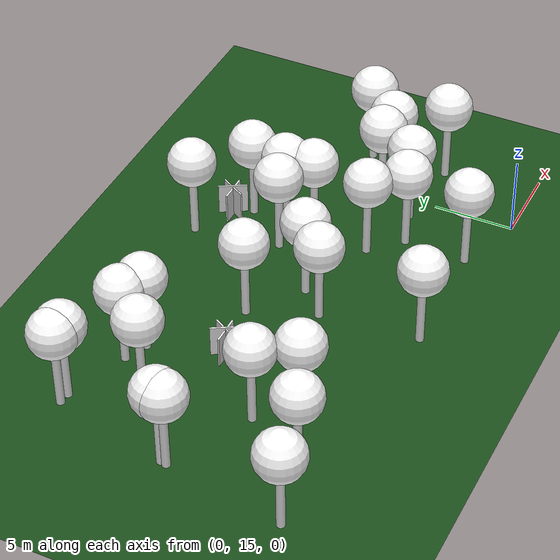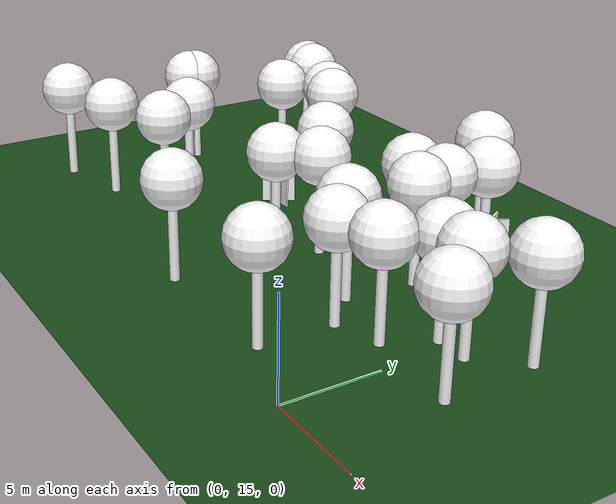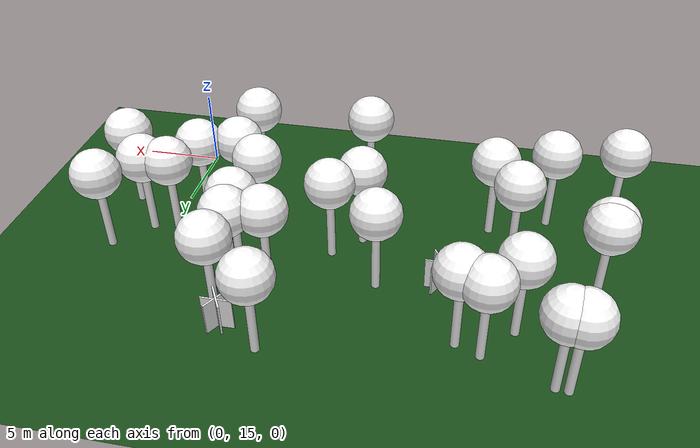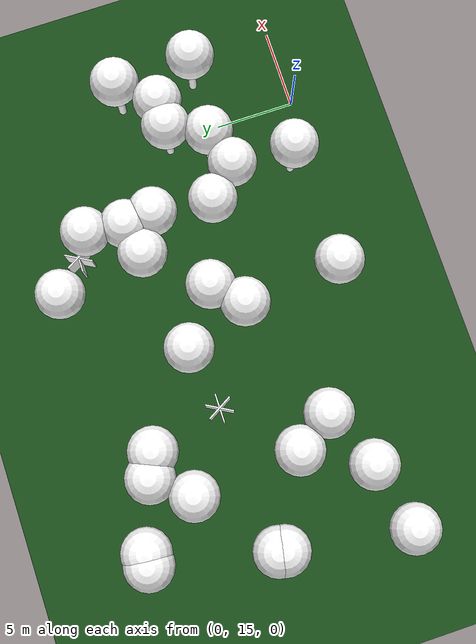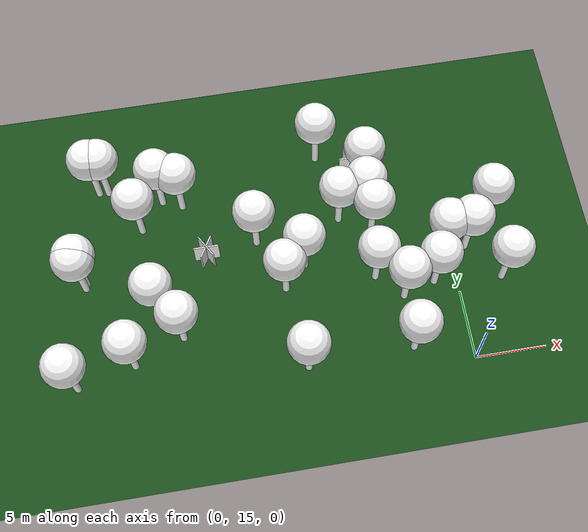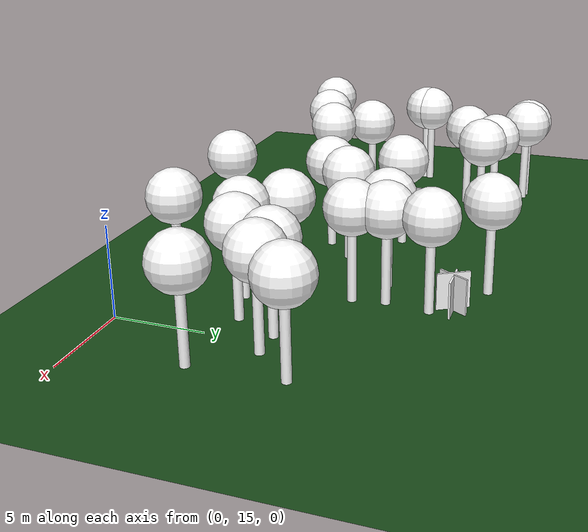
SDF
<sdf version="1.8">
 <world name="forest_world">
  <model name="fire_5">
   <pose>-17.50 25.65 1.00 0 0 0.00</pose>
   <static>true</static>
   <link name="fire_link">
    <visual name="fire_5_fire_main_0">
     <geometry><box><size>1.80 0.10 2.00</size></box></geometry>
     <material>
      <ambient>0.7 0.35 0.0 1</ambient>
      <diffuse>1 1 1 1</diffuse>
      <specular>0 0 0 1</specular>
      <emissive>0 0 0 1</emissive>
      <pbr>
       <metal><albedo_map>textures/fire.png</albedo_map><metalness>0.0</metalness><roughness>0.6</roughness></metal>
      </pbr>
     </material>
     <transparency>0.0</transparency>
     <cast_shadows>false</cast_shadows>
    </visual>
    <visual name="fire_5_fire_60_1">
     <pose>0.00 0.00 0.10 0 0 1.05</pose>
     <geometry><box><size>1.80 0.10 2.00</size></box></geometry>
     <material>
      <ambient>0.7 0.35 0.0 1</ambient>
      <diffuse>1 1 1 1</diffuse>
      <specular>0 0 0 1</specular>
      <emissive>0 0 0 1</emissive>
      <pbr>
       <metal><albedo_map>textures/fire.png</albedo_map><metalness>0.0</metalness><roughness>0.6</roughness></metal>
      </pbr>
     </material>
     <transparency>0.0</transparency>
     <cast_shadows>false</cast_shadows>
    </visual>
    <visual name="fire_5_fire_120_2">
     <pose>0.00 0.00 0.20 0 0 2.09</pose>
     <geometry><box><size>1.80 0.10 2.00</size></box></geometry>
     <material>
      <ambient>0.7 0.35 0.0 1</ambient>
      <diffuse>1 1 1 1</diffuse>
      <specular>0 0 0 1</specular>
      <emissive>0 0 0 1</emissive>
      <pbr>
       <metal><albedo_map>textures/fire.png</albedo_map><metalness>0.0</metalness><roughness>0.6</roughness></metal>
      </pbr>
     </material>
     <transparency>0.0</transparency>
     <cast_shadows>false</cast_shadows>
    </visual>
    <light type="point" name="fire_5_light_0">
     <pose>0.40 0.00 0.50 0 0 0</pose>
     <diffuse>1.0 0.7 0.3 1</diffuse>
     <specular>1.0 0.8 0.3 1</specular>
     <intensity>2</intensity>
     <attenuation>
      <range>2</range>
      <constant>0.1</constant>
      <linear>0.05</linear>
      <quadratic>0.02</quadratic>
     </attenuation>
     <cast_shadows>false</cast_shadows>
    </light>
    <light type="point" name="fire_5_light_1">
     <pose>-0.20 0.35 0.50 0 0 0</pose>
     <diffuse>1.0 0.7 0.3 1</diffuse>
     <specular>1.0 0.8 0.3 1</specular>
     <intensity>2</intensity>
     <attenuation>
      <range>2</range>
      <constant>0.1</constant>
      <linear>0.05</linear>
      <quadratic>0.02</quadratic>
     </attenuation>
     <cast_shadows>false</cast_shadows>
    </light>
    <light type="point" name="fire_5_light_2">
     <pose>-0.20 -0.35 0.50 0 0 0</pose>
     <diffuse>1.0 0.7 0.3 1</diffuse>
     <specular>1.0 0.8 0.3 1</specular>
     <intensity>2</intensity>
     <attenuation>
      <range>2</range>
      <constant>0.1</constant>
      <linear>0.05</linear>
      <quadratic>0.02</quadratic>
     </attenuation>
     <cast_shadows>false</cast_shadows>
    </light>
   </link>
   <plugin filename="libignition-gazebo-pose-publisher-system.so" name="ignition::gazebo::systems::PosePublisher">
    <frame_id>world</frame_id>
    <publish_link_pose>true</publish_link_pose>
    <use_pose_vector_msg>true</use_pose_vector_msg>
    <static_publisher>true</static_publisher>
    <static_update_frequency>1</static_update_frequency>
   </plugin>
  </model>
  <model name="fire_26">
   <pose>-5.96 31.06 1.00 0 0 0.00</pose>
   <static>true</static>
   <link name="fire_link">
    <visual name="fire_26_fire_main_0">
     <geometry><box><size>1.80 0.10 2.00</size></box></geometry>
     <material>
      <ambient>0.7 0.35 0.0 1</ambient>
      <diffuse>1 1 1 1</diffuse>
      <specular>0 0 0 1</specular>
      <emissive>0 0 0 1</emissive>
      <pbr>
       <metal><albedo_map>textures/fire.png</albedo_map><metalness>0.0</metalness><roughness>0.6</roughness></metal>
      </pbr>
     </material>
     <transparency>0.0</transparency>
     <cast_shadows>false</cast_shadows>
    </visual>
    <visual name="fire_26_fire_60_1">
     <pose>0.00 0.00 0.10 0 0 1.05</pose>
     <geometry><box><size>1.80 0.10 2.00</size></box></geometry>
     <material>
      <ambient>0.7 0.35 0.0 1</ambient>
      <diffuse>1 1 1 1</diffuse>
      <specular>0 0 0 1</specular>
      <emissive>0 0 0 1</emissive>
      <pbr>
       <metal><albedo_map>textures/fire.png</albedo_map><metalness>0.0</metalness><roughness>0.6</roughness></metal>
      </pbr>
     </material>
     <transparency>0.0</transparency>
     <cast_shadows>false</cast_shadows>
    </visual>
    <visual name="fire_26_fire_120_2">
     <pose>0.00 0.00 0.20 0 0 2.09</pose>
     <geometry><box><size>1.80 0.10 2.00</size></box></geometry>
     <material>
      <ambient>0.7 0.35 0.0 1</ambient>
      <diffuse>1 1 1 1</diffuse>
      <specular>0 0 0 1</specular>
      <emissive>0 0 0 1</emissive>
      <pbr>
       <metal><albedo_map>textures/fire.png</albedo_map><metalness>0.0</metalness><roughness>0.6</roughness></metal>
      </pbr>
     </material>
     <transparency>0.0</transparency>
     <cast_shadows>false</cast_shadows>
    </visual>
    <light type="point" name="fire_26_light_0">
     <pose>0.40 0.00 0.50 0 0 0</pose>
     <diffuse>1.0 0.7 0.3 1</diffuse>
     <specular>1.0 0.8 0.3 1</specular>
     <intensity>2</intensity>
     <attenuation>
      <range>2</range>
      <constant>0.1</constant>
      <linear>0.05</linear>
      <quadratic>0.02</quadratic>
     </attenuation>
     <cast_shadows>false</cast_shadows>
    </light>
    <light type="point" name="fire_26_light_1">
     <pose>-0.20 0.35 0.50 0 0 0</pose>
     <diffuse>1.0 0.7 0.3 1</diffuse>
     <specular>1.0 0.8 0.3 1</specular>
     <intensity>2</intensity>
     <attenuation>
      <range>2</range>
      <constant>0.1</constant>
      <linear>0.05</linear>
      <quadratic>0.02</quadratic>
     </attenuation>
     <cast_shadows>false</cast_shadows>
    </light>
    <light type="point" name="fire_26_light_2">
     <pose>-0.20 -0.35 0.50 0 0 0</pose>
     <diffuse>1.0 0.7 0.3 1</diffuse>
     <specular>1.0 0.8 0.3 1</specular>
     <intensity>2</intensity>
     <attenuation>
      <range>2</range>
      <constant>0.1</constant>
      <linear>0.05</linear>
      <quadratic>0.02</quadratic>
     </attenuation>
     <cast_shadows>false</cast_shadows>
    </light>
   </link>
   <plugin filename="libignition-gazebo-pose-publisher-system.so" name="ignition::gazebo::systems::PosePublisher">
    <frame_id>world</frame_id>
    <publish_link_pose>true</publish_link_pose>
    <use_pose_vector_msg>true</use_pose_vector_msg>
    <static_publisher>true</static_publisher>
    <static_update_frequency>1</static_update_frequency>
   </plugin>
  </model>
  <model name="tree_simple492">
   <static>1</static>
   <link name="link">
    <pose>0 0 0.1 0 -0 0</pose>
    <collision name="collision_trunk">
     <pose>0 0 2 0 -0 0</pose>
     <geometry><cylinder><radius>0.25</radius><length>4</length></cylinder></geometry>
    </collision>
    <collision name="collision_treetop">
     <pose>0 0 5.2 0 -0 0</pose>
     <geometry><sphere><radius>1.5</radius></sphere></geometry>
    </collision>
    <visual name="trunk">
     <pose>0 0 2 0 -0 0</pose>
     <geometry><cylinder><radius>0.25</radius><length>4</length></cylinder></geometry>
     <material>
      <ambient>0.5 0.5 0.5 1</ambient>
      <diffuse>1.0 1.0 1.0 1</diffuse>
      <specular>0.0 0.0 0.0 1</specular>
      <pbr>
       <metal>
        <albedo_map>../worlds/textures/tree_simple_trunk.jpg</albedo_map>
        <metalness>0.0</metalness>
        <roughness>0.8</roughness>
       </metal>
      </pbr>
     </material>
    </visual>
    <visual name="treetop">
     <pose>0 0 5.2 0 -0 0</pose>
     <geometry><sphere><radius>1.5</radius></sphere></geometry>
     <material>
      <ambient>0.5 0.5 0.5 1</ambient>
      <diffuse>1.0 1.0 1.0 1</diffuse>
      <specular>0.0 0.0 0.0 1</specular>
      <pbr>
       <metal>
        <albedo_map>../worlds/textures/tree_simple_treetop.jpg</albedo_map>
        <metalness>0.0</metalness>
        <roughness>0.9</roughness>
       </metal>
      </pbr>
     </material>
    </visual>
   </link>
   <pose>-7.60604313382 27.1336498888 0 0 -0 0</pose>
  </model>
  <model name="tree_simple479">
   <static>1</static>
   <link name="link">
    <pose>0 0 0.1 0 -0 0</pose>
    <collision name="collision_trunk">
     <pose>0 0 2 0 -0 0</pose>
     <geometry><cylinder><radius>0.25</radius><length>4</length></cylinder></geometry>
    </collision>
    <collision name="collision_treetop">
     <pose>0 0 5.2 0 -0 0</pose>
     <geometry><sphere><radius>1.5</radius></sphere></geometry>
    </collision>
    <visual name="trunk">
     <pose>0 0 2 0 -0 0</pose>
     <geometry><cylinder><radius>0.25</radius><length>4</length></cylinder></geometry>
     <material>
      <ambient>0.5 0.5 0.5 1</ambient>
      <diffuse>1.0 1.0 1.0 1</diffuse>
      <specular>0.0 0.0 0.0 1</specular>
      <pbr>
       <metal>
        <albedo_map>../worlds/textures/tree_simple_trunk.jpg</albedo_map>
        <metalness>0.0</metalness>
        <roughness>0.8</roughness>
       </metal>
      </pbr>
     </material>
    </visual>
    <visual name="treetop">
     <pose>0 0 5.2 0 -0 0</pose>
     <geometry><sphere><radius>1.5</radius></sphere></geometry>
     <material>
      <ambient>0.5 0.5 0.5 1</ambient>
      <diffuse>1.0 1.0 1.0 1</diffuse>
      <specular>0.0 0.0 0.0 1</specular>
      <pbr>
       <metal>
        <albedo_map>../worlds/textures/tree_simple_treetop.jpg</albedo_map>
        <metalness>0.0</metalness>
        <roughness>0.9</roughness>
       </metal>
      </pbr>
     </material>
    </visual>
   </link>
   <pose>-12.2778199556 22.3020251283 0 0 -0 0</pose>
  </model>
  <model name="tree_simple471">
   <static>1</static>
   <link name="link">
    <pose>0 0 0.1 0 -0 0</pose>
    <collision name="collision_trunk">
     <pose>0 0 2 0 -0 0</pose>
     <geometry><cylinder><radius>0.25</radius><length>4</length></cylinder></geometry>
    </collision>
    <collision name="collision_treetop">
     <pose>0 0 5.2 0 -0 0</pose>
     <geometry><sphere><radius>1.5</radius></sphere></geometry>
    </collision>
    <visual name="trunk">
     <pose>0 0 2 0 -0 0</pose>
     <geometry><cylinder><radius>0.25</radius><length>4</length></cylinder></geometry>
     <material>
      <ambient>0.5 0.5 0.5 1</ambient>
      <diffuse>1.0 1.0 1.0 1</diffuse>
      <specular>0.0 0.0 0.0 1</specular>
      <pbr>
       <metal>
        <albedo_map>../worlds/textures/tree_simple_trunk.jpg</albedo_map>
        <metalness>0.0</metalness>
        <roughness>0.8</roughness>
       </metal>
      </pbr>
     </material>
    </visual>
    <visual name="treetop">
     <pose>0 0 5.2 0 -0 0</pose>
     <geometry><sphere><radius>1.5</radius></sphere></geometry>
     <material>
      <ambient>0.5 0.5 0.5 1</ambient>
      <diffuse>1.0 1.0 1.0 1</diffuse>
      <specular>0.0 0.0 0.0 1</specular>
      <pbr>
       <metal>
        <albedo_map>../worlds/textures/tree_simple_treetop.jpg</albedo_map>
        <metalness>0.0</metalness>
        <roughness>0.9</roughness>
       </metal>
      </pbr>
     </material>
    </visual>
   </link>
   <pose>-4.10985349052 16.4703272545 0 0 -0 0</pose>
  </model>
  <model name="tree_simple466">
   <static>1</static>
   <link name="link">
    <pose>0 0 0.1 0 -0 0</pose>
    <collision name="collision_trunk">
     <pose>0 0 2 0 -0 0</pose>
     <geometry><cylinder><radius>0.25</radius><length>4</length></cylinder></geometry>
    </collision>
    <collision name="collision_treetop">
     <pose>0 0 5.2 0 -0 0</pose>
     <geometry><sphere><radius>1.5</radius></sphere></geometry>
    </collision>
    <visual name="trunk">
     <pose>0 0 2 0 -0 0</pose>
     <geometry><cylinder><radius>0.25</radius><length>4</length></cylinder></geometry>
     <material>
      <ambient>0.5 0.5 0.5 1</ambient>
      <diffuse>1.0 1.0 1.0 1</diffuse>
      <specular>0.0 0.0 0.0 1</specular>
      <pbr>
       <metal>
        <albedo_map>../worlds/textures/tree_simple_trunk.jpg</albedo_map>
        <metalness>0.0</metalness>
        <roughness>0.8</roughness>
       </metal>
      </pbr>
     </material>
    </visual>
    <visual name="treetop">
     <pose>0 0 5.2 0 -0 0</pose>
     <geometry><sphere><radius>1.5</radius></sphere></geometry>
     <material>
      <ambient>0.5 0.5 0.5 1</ambient>
      <diffuse>1.0 1.0 1.0 1</diffuse>
      <specular>0.0 0.0 0.0 1</specular>
      <pbr>
       <metal>
        <albedo_map>../worlds/textures/tree_simple_treetop.jpg</albedo_map>
        <metalness>0.0</metalness>
        <roughness>0.9</roughness>
       </metal>
      </pbr>
     </material>
    </visual>
   </link>
   <pose>-5.77986608036 22.173723886 0 0 -0 0</pose>
  </model>
  <model name="tree_simple442">
   <static>1</static>
   <link name="link">
    <pose>0 0 0.1 0 -0 0</pose>
    <collision name="collision_trunk">
     <pose>0 0 2 0 -0 0</pose>
     <geometry><cylinder><radius>0.25</radius><length>4</length></cylinder></geometry>
    </collision>
    <collision name="collision_treetop">
     <pose>0 0 5.2 0 -0 0</pose>
     <geometry><sphere><radius>1.5</radius></sphere></geometry>
    </collision>
    <visual name="trunk">
     <pose>0 0 2 0 -0 0</pose>
     <geometry><cylinder><radius>0.25</radius><length>4</length></cylinder></geometry>
     <material>
      <ambient>0.5 0.5 0.5 1</ambient>
      <diffuse>1.0 1.0 1.0 1</diffuse>
      <specular>0.0 0.0 0.0 1</specular>
      <pbr>
       <metal>
        <albedo_map>../worlds/textures/tree_simple_trunk.jpg</albedo_map>
        <metalness>0.0</metalness>
        <roughness>0.8</roughness>
       </metal>
      </pbr>
     </material>
    </visual>
    <visual name="treetop">
     <pose>0 0 5.2 0 -0 0</pose>
     <geometry><sphere><radius>1.5</radius></sphere></geometry>
     <material>
      <ambient>0.5 0.5 0.5 1</ambient>
      <diffuse>1.0 1.0 1.0 1</diffuse>
      <specular>0.0 0.0 0.0 1</specular>
      <pbr>
       <metal>
        <albedo_map>../worlds/textures/tree_simple_treetop.jpg</albedo_map>
        <metalness>0.0</metalness>
        <roughness>0.9</roughness>
       </metal>
      </pbr>
     </material>
    </visual>
   </link>
   <pose>-1.68249170611 21.1094247696 0 0 -0 0</pose>
  </model>
  <model name="tree_simple398">
   <static>1</static>
   <link name="link">
    <pose>0 0 0.1 0 -0 0</pose>
    <collision name="collision_trunk">
     <pose>0 0 2 0 -0 0</pose>
     <geometry><cylinder><radius>0.25</radius><length>4</length></cylinder></geometry>
    </collision>
    <collision name="collision_treetop">
     <pose>0 0 5.2 0 -0 0</pose>
     <geometry><sphere><radius>1.5</radius></sphere></geometry>
    </collision>
    <visual name="trunk">
     <pose>0 0 2 0 -0 0</pose>
     <geometry><cylinder><radius>0.25</radius><length>4</length></cylinder></geometry>
     <material>
      <ambient>0.5 0.5 0.5 1</ambient>
      <diffuse>1.0 1.0 1.0 1</diffuse>
      <specular>0.0 0.0 0.0 1</specular>
      <pbr>
       <metal>
        <albedo_map>../worlds/textures/tree_simple_trunk.jpg</albedo_map>
        <metalness>0.0</metalness>
        <roughness>0.8</roughness>
       </metal>
      </pbr>
     </material>
    </visual>
    <visual name="treetop">
     <pose>0 0 5.2 0 -0 0</pose>
     <geometry><sphere><radius>1.5</radius></sphere></geometry>
     <material>
      <ambient>0.5 0.5 0.5 1</ambient>
      <diffuse>1.0 1.0 1.0 1</diffuse>
      <specular>0.0 0.0 0.0 1</specular>
      <pbr>
       <metal>
        <albedo_map>../worlds/textures/tree_simple_treetop.jpg</albedo_map>
        <metalness>0.0</metalness>
        <roughness>0.9</roughness>
       </metal>
      </pbr>
     </material>
    </visual>
   </link>
   <pose>-5.63129043723 27.5985943182 0 0 -0 0</pose>
  </model>
  <model name="tree_simple359">
   <static>1</static>
   <link name="link">
    <pose>0 0 0.1 0 -0 0</pose>
    <collision name="collision_trunk">
     <pose>0 0 2 0 -0 0</pose>
     <geometry><cylinder><radius>0.25</radius><length>4</length></cylinder></geometry>
    </collision>
    <collision name="collision_treetop">
     <pose>0 0 5.2 0 -0 0</pose>
     <geometry><sphere><radius>1.5</radius></sphere></geometry>
    </collision>
    <visual name="trunk">
     <pose>0 0 2 0 -0 0</pose>
     <geometry><cylinder><radius>0.25</radius><length>4</length></cylinder></geometry>
     <material>
      <ambient>0.5 0.5 0.5 1</ambient>
      <diffuse>1.0 1.0 1.0 1</diffuse>
      <specular>0.0 0.0 0.0 1</specular>
      <pbr>
       <metal>
        <albedo_map>../worlds/textures/tree_simple_trunk.jpg</albedo_map>
        <metalness>0.0</metalness>
        <roughness>0.8</roughness>
       </metal>
      </pbr>
     </material>
    </visual>
    <visual name="treetop">
     <pose>0 0 5.2 0 -0 0</pose>
     <geometry><sphere><radius>1.5</radius></sphere></geometry>
     <material>
      <ambient>0.5 0.5 0.5 1</ambient>
      <diffuse>1.0 1.0 1.0 1</diffuse>
      <specular>0.0 0.0 0.0 1</specular>
      <pbr>
       <metal>
        <albedo_map>../worlds/textures/tree_simple_treetop.jpg</albedo_map>
        <metalness>0.0</metalness>
        <roughness>0.9</roughness>
       </metal>
      </pbr>
     </material>
    </visual>
   </link>
   <pose>-20.2372130322 30.6626507403 0 0 -0 0</pose>
  </model>
  <model name="tree_simple353">
   <static>1</static>
   <link name="link">
    <pose>0 0 0.1 0 -0 0</pose>
    <collision name="collision_trunk">
     <pose>0 0 2 0 -0 0</pose>
     <geometry><cylinder><radius>0.25</radius><length>4</length></cylinder></geometry>
    </collision>
    <collision name="collision_treetop">
     <pose>0 0 5.2 0 -0 0</pose>
     <geometry><sphere><radius>1.5</radius></sphere></geometry>
    </collision>
    <visual name="trunk">
     <pose>0 0 2 0 -0 0</pose>
     <geometry><cylinder><radius>0.25</radius><length>4</length></cylinder></geometry>
     <material>
      <ambient>0.5 0.5 0.5 1</ambient>
      <diffuse>1.0 1.0 1.0 1</diffuse>
      <specular>0.0 0.0 0.0 1</specular>
      <pbr>
       <metal>
        <albedo_map>../worlds/textures/tree_simple_trunk.jpg</albedo_map>
        <metalness>0.0</metalness>
        <roughness>0.8</roughness>
       </metal>
      </pbr>
     </material>
    </visual>
    <visual name="treetop">
     <pose>0 0 5.2 0 -0 0</pose>
     <geometry><sphere><radius>1.5</radius></sphere></geometry>
     <material>
      <ambient>0.5 0.5 0.5 1</ambient>
      <diffuse>1.0 1.0 1.0 1</diffuse>
      <specular>0.0 0.0 0.0 1</specular>
      <pbr>
       <metal>
        <albedo_map>../worlds/textures/tree_simple_treetop.jpg</albedo_map>
        <metalness>0.0</metalness>
        <roughness>0.9</roughness>
       </metal>
      </pbr>
     </material>
    </visual>
   </link>
   <pose>-8.45318639894 32.4449291469 0 0 -0 0</pose>
  </model>
  <model name="tree_simple310">
   <static>1</static>
   <link name="link">
    <pose>0 0 0.1 0 -0 0</pose>
    <collision name="collision_trunk">
     <pose>0 0 2 0 -0 0</pose>
     <geometry><cylinder><radius>0.25</radius><length>4</length></cylinder></geometry>
    </collision>
    <collision name="collision_treetop">
     <pose>0 0 5.2 0 -0 0</pose>
     <geometry><sphere><radius>1.5</radius></sphere></geometry>
    </collision>
    <visual name="trunk">
     <pose>0 0 2 0 -0 0</pose>
     <geometry><cylinder><radius>0.25</radius><length>4</length></cylinder></geometry>
     <material>
      <ambient>0.5 0.5 0.5 1</ambient>
      <diffuse>1.0 1.0 1.0 1</diffuse>
      <specular>0.0 0.0 0.0 1</specular>
      <pbr>
       <metal>
        <albedo_map>../worlds/textures/tree_simple_trunk.jpg</albedo_map>
        <metalness>0.0</metalness>
        <roughness>0.8</roughness>
       </metal>
      </pbr>
     </material>
    </visual>
    <visual name="treetop">
     <pose>0 0 5.2 0 -0 0</pose>
     <geometry><sphere><radius>1.5</radius></sphere></geometry>
     <material>
      <ambient>0.5 0.5 0.5 1</ambient>
      <diffuse>1.0 1.0 1.0 1</diffuse>
      <specular>0.0 0.0 0.0 1</specular>
      <pbr>
       <metal>
        <albedo_map>../worlds/textures/tree_simple_treetop.jpg</albedo_map>
        <metalness>0.0</metalness>
        <roughness>0.9</roughness>
       </metal>
      </pbr>
     </material>
    </visual>
   </link>
   <pose>-24.1249967054 32.1060106323 0 0 -0 0</pose>
  </model>
  <model name="tree_simple251">
   <static>1</static>
   <link name="link">
    <pose>0 0 0.1 0 -0 0</pose>
    <collision name="collision_trunk">
     <pose>0 0 2 0 -0 0</pose>
     <geometry><cylinder><radius>0.25</radius><length>4</length></cylinder></geometry>
    </collision>
    <collision name="collision_treetop">
     <pose>0 0 5.2 0 -0 0</pose>
     <geometry><sphere><radius>1.5</radius></sphere></geometry>
    </collision>
    <visual name="trunk">
     <pose>0 0 2 0 -0 0</pose>
     <geometry><cylinder><radius>0.25</radius><length>4</length></cylinder></geometry>
     <material>
      <ambient>0.5 0.5 0.5 1</ambient>
      <diffuse>1.0 1.0 1.0 1</diffuse>
      <specular>0.0 0.0 0.0 1</specular>
      <pbr>
       <metal>
        <albedo_map>../worlds/textures/tree_simple_trunk.jpg</albedo_map>
        <metalness>0.0</metalness>
        <roughness>0.8</roughness>
       </metal>
      </pbr>
     </material>
    </visual>
    <visual name="treetop">
     <pose>0 0 5.2 0 -0 0</pose>
     <geometry><sphere><radius>1.5</radius></sphere></geometry>
     <material>
      <ambient>0.5 0.5 0.5 1</ambient>
      <diffuse>1.0 1.0 1.0 1</diffuse>
      <specular>0.0 0.0 0.0 1</specular>
      <pbr>
       <metal>
        <albedo_map>../worlds/textures/tree_simple_treetop.jpg</albedo_map>
        <metalness>0.0</metalness>
        <roughness>0.9</roughness>
       </metal>
      </pbr>
     </material>
    </visual>
   </link>
   <pose>-19.9479400909 19.7976665809 0 0 -0 0</pose>
  </model>
  <model name="tree_simple232">
   <static>1</static>
   <link name="link">
    <pose>0 0 0.1 0 -0 0</pose>
    <collision name="collision_trunk">
     <pose>0 0 2 0 -0 0</pose>
     <geometry><cylinder><radius>0.25</radius><length>4</length></cylinder></geometry>
    </collision>
    <collision name="collision_treetop">
     <pose>0 0 5.2 0 -0 0</pose>
     <geometry><sphere><radius>1.5</radius></sphere></geometry>
    </collision>
    <visual name="trunk">
     <pose>0 0 2 0 -0 0</pose>
     <geometry><cylinder><radius>0.25</radius><length>4</length></cylinder></geometry>
     <material>
      <ambient>0.5 0.5 0.5 1</ambient>
      <diffuse>1.0 1.0 1.0 1</diffuse>
      <specular>0.0 0.0 0.0 1</specular>
      <pbr>
       <metal>
        <albedo_map>../worlds/textures/tree_simple_trunk.jpg</albedo_map>
        <metalness>0.0</metalness>
        <roughness>0.8</roughness>
       </metal>
      </pbr>
     </material>
    </visual>
    <visual name="treetop">
     <pose>0 0 5.2 0 -0 0</pose>
     <geometry><sphere><radius>1.5</radius></sphere></geometry>
     <material>
      <ambient>0.5 0.5 0.5 1</ambient>
      <diffuse>1.0 1.0 1.0 1</diffuse>
      <specular>0.0 0.0 0.0 1</specular>
      <pbr>
       <metal>
        <albedo_map>../worlds/textures/tree_simple_treetop.jpg</albedo_map>
        <metalness>0.0</metalness>
        <roughness>0.9</roughness>
       </metal>
      </pbr>
     </material>
    </visual>
   </link>
   <pose>-11.6357803634 16.236207717 0 0 -0 0</pose>
  </model>
  <model name="tree_simple186">
   <static>1</static>
   <link name="link">
    <pose>0 0 0.1 0 -0 0</pose>
    <collision name="collision_trunk">
     <pose>0 0 2 0 -0 0</pose>
     <geometry><cylinder><radius>0.25</radius><length>4</length></cylinder></geometry>
    </collision>
    <collision name="collision_treetop">
     <pose>0 0 5.2 0 -0 0</pose>
     <geometry><sphere><radius>1.5</radius></sphere></geometry>
    </collision>
    <visual name="trunk">
     <pose>0 0 2 0 -0 0</pose>
     <geometry><cylinder><radius>0.25</radius><length>4</length></cylinder></geometry>
     <material>
      <ambient>0.5 0.5 0.5 1</ambient>
      <diffuse>1.0 1.0 1.0 1</diffuse>
      <specular>0.0 0.0 0.0 1</specular>
      <pbr>
       <metal>
        <albedo_map>../worlds/textures/tree_simple_trunk.jpg</albedo_map>
        <metalness>0.0</metalness>
        <roughness>0.8</roughness>
       </metal>
      </pbr>
     </material>
    </visual>
    <visual name="treetop">
     <pose>0 0 5.2 0 -0 0</pose>
     <geometry><sphere><radius>1.5</radius></sphere></geometry>
     <material>
      <ambient>0.5 0.5 0.5 1</ambient>
      <diffuse>1.0 1.0 1.0 1</diffuse>
      <specular>0.0 0.0 0.0 1</specular>
      <pbr>
       <metal>
        <albedo_map>../worlds/textures/tree_simple_treetop.jpg</albedo_map>
        <metalness>0.0</metalness>
        <roughness>0.9</roughness>
       </metal>
      </pbr>
     </material>
    </visual>
   </link>
   <pose>-26.4394079644 24.666728782 0 0 -0 0</pose>
  </model>
  <model name="tree_simple183">
   <static>1</static>
   <link name="link">
    <pose>0 0 0.1 0 -0 0</pose>
    <collision name="collision_trunk">
     <pose>0 0 2 0 -0 0</pose>
     <geometry><cylinder><radius>0.25</radius><length>4</length></cylinder></geometry>
    </collision>
    <collision name="collision_treetop">
     <pose>0 0 5.2 0 -0 0</pose>
     <geometry><sphere><radius>1.5</radius></sphere></geometry>
    </collision>
    <visual name="trunk">
     <pose>0 0 2 0 -0 0</pose>
     <geometry><cylinder><radius>0.25</radius><length>4</length></cylinder></geometry>
     <material>
      <ambient>0.5 0.5 0.5 1</ambient>
      <diffuse>1.0 1.0 1.0 1</diffuse>
      <specular>0.0 0.0 0.0 1</specular>
      <pbr>
       <metal>
        <albedo_map>../worlds/textures/tree_simple_trunk.jpg</albedo_map>
        <metalness>0.0</metalness>
        <roughness>0.8</roughness>
       </metal>
      </pbr>
     </material>
    </visual>
    <visual name="treetop">
     <pose>0 0 5.2 0 -0 0</pose>
     <geometry><sphere><radius>1.5</radius></sphere></geometry>
     <material>
      <ambient>0.5 0.5 0.5 1</ambient>
      <diffuse>1.0 1.0 1.0 1</diffuse>
      <specular>0.0 0.0 0.0 1</specular>
      <pbr>
       <metal>
        <albedo_map>../worlds/textures/tree_simple_treetop.jpg</albedo_map>
        <metalness>0.0</metalness>
        <roughness>0.9</roughness>
       </metal>
      </pbr>
     </material>
    </visual>
   </link>
   <pose>-24.8051767245 32.1734283562 0 0 -0 0</pose>
  </model>
  <model name="tree_simple175">
   <static>1</static>
   <link name="link">
    <pose>0 0 0.1 0 -0 0</pose>
    <collision name="collision_trunk">
     <pose>0 0 2 0 -0 0</pose>
     <geometry><cylinder><radius>0.25</radius><length>4</length></cylinder></geometry>
    </collision>
    <collision name="collision_treetop">
     <pose>0 0 5.2 0 -0 0</pose>
     <geometry><sphere><radius>1.5</radius></sphere></geometry>
    </collision>
    <visual name="trunk">
     <pose>0 0 2 0 -0 0</pose>
     <geometry><cylinder><radius>0.25</radius><length>4</length></cylinder></geometry>
     <material>
      <ambient>0.5 0.5 0.5 1</ambient>
      <diffuse>1.0 1.0 1.0 1</diffuse>
      <specular>0.0 0.0 0.0 1</specular>
      <pbr>
       <metal>
        <albedo_map>../worlds/textures/tree_simple_trunk.jpg</albedo_map>
        <metalness>0.0</metalness>
        <roughness>0.8</roughness>
       </metal>
      </pbr>
     </material>
    </visual>
    <visual name="treetop">
     <pose>0 0 5.2 0 -0 0</pose>
     <geometry><sphere><radius>1.5</radius></sphere></geometry>
     <material>
      <ambient>0.5 0.5 0.5 1</ambient>
      <diffuse>1.0 1.0 1.0 1</diffuse>
      <specular>0.0 0.0 0.0 1</specular>
      <pbr>
       <metal>
        <albedo_map>../worlds/textures/tree_simple_treetop.jpg</albedo_map>
        <metalness>0.0</metalness>
        <roughness>0.9</roughness>
       </metal>
      </pbr>
     </material>
    </visual>
   </link>
   <pose>-0.556108098606 23.4554331428 0 0 -0 0</pose>
  </model>
  <model name="tree_simple174">
   <static>1</static>
   <link name="link">
    <pose>0 0 0.1 0 -0 0</pose>
    <collision name="collision_trunk">
     <pose>0 0 2 0 -0 0</pose>
     <geometry><cylinder><radius>0.25</radius><length>4</length></cylinder></geometry>
    </collision>
    <collision name="collision_treetop">
     <pose>0 0 5.2 0 -0 0</pose>
     <geometry><sphere><radius>1.5</radius></sphere></geometry>
    </collision>
    <visual name="trunk">
     <pose>0 0 2 0 -0 0</pose>
     <geometry><cylinder><radius>0.25</radius><length>4</length></cylinder></geometry>
     <material>
      <ambient>0.5 0.5 0.5 1</ambient>
      <diffuse>1.0 1.0 1.0 1</diffuse>
      <specular>0.0 0.0 0.0 1</specular>
      <pbr>
       <metal>
        <albedo_map>../worlds/textures/tree_simple_trunk.jpg</albedo_map>
        <metalness>0.0</metalness>
        <roughness>0.8</roughness>
       </metal>
      </pbr>
     </material>
    </visual>
    <visual name="treetop">
     <pose>0 0 5.2 0 -0 0</pose>
     <geometry><sphere><radius>1.5</radius></sphere></geometry>
     <material>
      <ambient>0.5 0.5 0.5 1</ambient>
      <diffuse>1.0 1.0 1.0 1</diffuse>
      <specular>0.0 0.0 0.0 1</specular>
      <pbr>
       <metal>
        <albedo_map>../worlds/textures/tree_simple_treetop.jpg</albedo_map>
        <metalness>0.0</metalness>
        <roughness>0.9</roughness>
       </metal>
      </pbr>
     </material>
    </visual>
   </link>
   <pose>-26.363349587 25.0273342245 0 0 -0 0</pose>
  </model>
  <model name="tree_simple119">
   <static>1</static>
   <link name="link">
    <pose>0 0 0.1 0 -0 0</pose>
    <collision name="collision_trunk">
     <pose>0 0 2 0 -0 0</pose>
     <geometry><cylinder><radius>0.25</radius><length>4</length></cylinder></geometry>
    </collision>
    <collision name="collision_treetop">
     <pose>0 0 5.2 0 -0 0</pose>
     <geometry><sphere><radius>1.5</radius></sphere></geometry>
    </collision>
    <visual name="trunk">
     <pose>0 0 2 0 -0 0</pose>
     <geometry><cylinder><radius>0.25</radius><length>4</length></cylinder></geometry>
     <material>
      <ambient>0.5 0.5 0.5 1</ambient>
      <diffuse>1.0 1.0 1.0 1</diffuse>
      <specular>0.0 0.0 0.0 1</specular>
      <pbr>
       <metal>
        <albedo_map>../worlds/textures/tree_simple_trunk.jpg</albedo_map>
        <metalness>0.0</metalness>
        <roughness>0.8</roughness>
       </metal>
      </pbr>
     </material>
    </visual>
    <visual name="treetop">
     <pose>0 0 5.2 0 -0 0</pose>
     <geometry><sphere><radius>1.5</radius></sphere></geometry>
     <material>
      <ambient>0.5 0.5 0.5 1</ambient>
      <diffuse>1.0 1.0 1.0 1</diffuse>
      <specular>0.0 0.0 0.0 1</specular>
      <pbr>
       <metal>
        <albedo_map>../worlds/textures/tree_simple_treetop.jpg</albedo_map>
        <metalness>0.0</metalness>
        <roughness>0.9</roughness>
       </metal>
      </pbr>
     </material>
    </visual>
   </link>
   <pose>-27.5998375986 17.3076325805 0 0 -0 0</pose>
  </model>
  <model name="tree_simple113">
   <static>1</static>
   <link name="link">
    <pose>0 0 0.1 0 -0 0</pose>
    <collision name="collision_trunk">
     <pose>0 0 2 0 -0 0</pose>
     <geometry><cylinder><radius>0.25</radius><length>4</length></cylinder></geometry>
    </collision>
    <collision name="collision_treetop">
     <pose>0 0 5.2 0 -0 0</pose>
     <geometry><sphere><radius>1.5</radius></sphere></geometry>
    </collision>
    <visual name="trunk">
     <pose>0 0 2 0 -0 0</pose>
     <geometry><cylinder><radius>0.25</radius><length>4</length></cylinder></geometry>
     <material>
      <ambient>0.5 0.5 0.5 1</ambient>
      <diffuse>1.0 1.0 1.0 1</diffuse>
      <specular>0.0 0.0 0.0 1</specular>
      <pbr>
       <metal>
        <albedo_map>../worlds/textures/tree_simple_trunk.jpg</albedo_map>
        <metalness>0.0</metalness>
        <roughness>0.8</roughness>
       </metal>
      </pbr>
     </material>
    </visual>
    <visual name="treetop">
     <pose>0 0 5.2 0 -0 0</pose>
     <geometry><sphere><radius>1.5</radius></sphere></geometry>
     <material>
      <ambient>0.5 0.5 0.5 1</ambient>
      <diffuse>1.0 1.0 1.0 1</diffuse>
      <specular>0.0 0.0 0.0 1</specular>
      <pbr>
       <metal>
        <albedo_map>../worlds/textures/tree_simple_treetop.jpg</albedo_map>
        <metalness>0.0</metalness>
        <roughness>0.9</roughness>
       </metal>
      </pbr>
     </material>
    </visual>
   </link>
   <pose>2.99718347824 25.5817803205 0 0 -0 0</pose>
  </model>
  <model name="tree_simple110">
   <static>1</static>
   <link name="link">
    <pose>0 0 0.1 0 -0 0</pose>
    <collision name="collision_trunk">
     <pose>0 0 2 0 -0 0</pose>
     <geometry><cylinder><radius>0.25</radius><length>4</length></cylinder></geometry>
    </collision>
    <collision name="collision_treetop">
     <pose>0 0 5.2 0 -0 0</pose>
     <geometry><sphere><radius>1.5</radius></sphere></geometry>
    </collision>
    <visual name="trunk">
     <pose>0 0 2 0 -0 0</pose>
     <geometry><cylinder><radius>0.25</radius><length>4</length></cylinder></geometry>
     <material>
      <ambient>0.5 0.5 0.5 1</ambient>
      <diffuse>1.0 1.0 1.0 1</diffuse>
      <specular>0.0 0.0 0.0 1</specular>
      <pbr>
       <metal>
        <albedo_map>../worlds/textures/tree_simple_trunk.jpg</albedo_map>
        <metalness>0.0</metalness>
        <roughness>0.8</roughness>
       </metal>
      </pbr>
     </material>
    </visual>
    <visual name="treetop">
     <pose>0 0 5.2 0 -0 0</pose>
     <geometry><sphere><radius>1.5</radius></sphere></geometry>
     <material>
      <ambient>0.5 0.5 0.5 1</ambient>
      <diffuse>1.0 1.0 1.0 1</diffuse>
      <specular>0.0 0.0 0.0 1</specular>
      <pbr>
       <metal>
        <albedo_map>../worlds/textures/tree_simple_treetop.jpg</albedo_map>
        <metalness>0.0</metalness>
        <roughness>0.9</roughness>
       </metal>
      </pbr>
     </material>
    </visual>
   </link>
   <pose>-5.41034027226 25.8326134986 0 0 -0 0</pose>
  </model>
  <model name="tree_simple104">
   <static>1</static>
   <link name="link">
    <pose>0 0 0.1 0 -0 0</pose>
    <collision name="collision_trunk">
     <pose>0 0 2 0 -0 0</pose>
     <geometry><cylinder><radius>0.25</radius><length>4</length></cylinder></geometry>
    </collision>
    <collision name="collision_treetop">
     <pose>0 0 5.2 0 -0 0</pose>
     <geometry><sphere><radius>1.5</radius></sphere></geometry>
    </collision>
    <visual name="trunk">
     <pose>0 0 2 0 -0 0</pose>
     <geometry><cylinder><radius>0.25</radius><length>4</length></cylinder></geometry>
     <material>
      <ambient>0.5 0.5 0.5 1</ambient>
      <diffuse>1.0 1.0 1.0 1</diffuse>
      <specular>0.0 0.0 0.0 1</specular>
      <pbr>
       <metal>
        <albedo_map>../worlds/textures/tree_simple_trunk.jpg</albedo_map>
        <metalness>0.0</metalness>
        <roughness>0.8</roughness>
       </metal>
      </pbr>
     </material>
    </visual>
    <visual name="treetop">
     <pose>0 0 5.2 0 -0 0</pose>
     <geometry><sphere><radius>1.5</radius></sphere></geometry>
     <material>
      <ambient>0.5 0.5 0.5 1</ambient>
      <diffuse>1.0 1.0 1.0 1</diffuse>
      <specular>0.0 0.0 0.0 1</specular>
      <pbr>
       <metal>
        <albedo_map>../worlds/textures/tree_simple_treetop.jpg</albedo_map>
        <metalness>0.0</metalness>
        <roughness>0.9</roughness>
       </metal>
      </pbr>
     </material>
    </visual>
   </link>
   <pose>-21.9670509501 28.5770993943 0 0 -0 0</pose>
  </model>
  <model name="tree_simple103">
   <static>1</static>
   <link name="link">
    <pose>0 0 0.1 0 -0 0</pose>
    <collision name="collision_trunk">
     <pose>0 0 2 0 -0 0</pose>
     <geometry><cylinder><radius>0.25</radius><length>4</length></cylinder></geometry>
    </collision>
    <collision name="collision_treetop">
     <pose>0 0 5.2 0 -0 0</pose>
     <geometry><sphere><radius>1.5</radius></sphere></geometry>
    </collision>
    <visual name="trunk">
     <pose>0 0 2 0 -0 0</pose>
     <geometry><cylinder><radius>0.25</radius><length>4</length></cylinder></geometry>
     <material>
      <ambient>0.5 0.5 0.5 1</ambient>
      <diffuse>1.0 1.0 1.0 1</diffuse>
      <specular>0.0 0.0 0.0 1</specular>
      <pbr>
       <metal>
        <albedo_map>../worlds/textures/tree_simple_trunk.jpg</albedo_map>
        <metalness>0.0</metalness>
        <roughness>0.8</roughness>
       </metal>
      </pbr>
     </material>
    </visual>
    <visual name="treetop">
     <pose>0 0 5.2 0 -0 0</pose>
     <geometry><sphere><radius>1.5</radius></sphere></geometry>
     <material>
      <ambient>0.5 0.5 0.5 1</ambient>
      <diffuse>1.0 1.0 1.0 1</diffuse>
      <specular>0.0 0.0 0.0 1</specular>
      <pbr>
       <metal>
        <albedo_map>../worlds/textures/tree_simple_treetop.jpg</albedo_map>
        <metalness>0.0</metalness>
        <roughness>0.9</roughness>
       </metal>
      </pbr>
     </material>
    </visual>
   </link>
   <pose>-23.5128318618 18.2920552876 0 0 -0 0</pose>
  </model>
  <model name="tree_simple95">
   <static>1</static>
   <link name="link">
    <pose>0 0 0.1 0 -0 0</pose>
    <collision name="collision_trunk">
     <pose>0 0 2 0 -0 0</pose>
     <geometry><cylinder><radius>0.25</radius><length>4</length></cylinder></geometry>
    </collision>
    <collision name="collision_treetop">
     <pose>0 0 5.2 0 -0 0</pose>
     <geometry><sphere><radius>1.5</radius></sphere></geometry>
    </collision>
    <visual name="trunk">
     <pose>0 0 2 0 -0 0</pose>
     <geometry><cylinder><radius>0.25</radius><length>4</length></cylinder></geometry>
     <material>
      <ambient>0.5 0.5 0.5 1</ambient>
      <diffuse>1.0 1.0 1.0 1</diffuse>
      <specular>0.0 0.0 0.0 1</specular>
      <pbr>
       <metal>
        <albedo_map>../worlds/textures/tree_simple_trunk.jpg</albedo_map>
        <metalness>0.0</metalness>
        <roughness>0.8</roughness>
       </metal>
      </pbr>
     </material>
    </visual>
    <visual name="treetop">
     <pose>0 0 5.2 0 -0 0</pose>
     <geometry><sphere><radius>1.5</radius></sphere></geometry>
     <material>
      <ambient>0.5 0.5 0.5 1</ambient>
      <diffuse>1.0 1.0 1.0 1</diffuse>
      <specular>0.0 0.0 0.0 1</specular>
      <pbr>
       <metal>
        <albedo_map>../worlds/textures/tree_simple_treetop.jpg</albedo_map>
        <metalness>0.0</metalness>
        <roughness>0.9</roughness>
       </metal>
      </pbr>
     </material>
    </visual>
   </link>
   <pose>3.20302207312 20.7020436907 0 0 -0 0</pose>
  </model>
  <model name="tree_simple86">
   <static>1</static>
   <link name="link">
    <pose>0 0 0.1 0 -0 0</pose>
    <collision name="collision_trunk">
     <pose>0 0 2 0 -0 0</pose>
     <geometry><cylinder><radius>0.25</radius><length>4</length></cylinder></geometry>
    </collision>
    <collision name="collision_treetop">
     <pose>0 0 5.2 0 -0 0</pose>
     <geometry><sphere><radius>1.5</radius></sphere></geometry>
    </collision>
    <visual name="trunk">
     <pose>0 0 2 0 -0 0</pose>
     <geometry><cylinder><radius>0.25</radius><length>4</length></cylinder></geometry>
     <material>
      <ambient>0.5 0.5 0.5 1</ambient>
      <diffuse>1.0 1.0 1.0 1</diffuse>
      <specular>0.0 0.0 0.0 1</specular>
      <pbr>
       <metal>
        <albedo_map>../worlds/textures/tree_simple_trunk.jpg</albedo_map>
        <metalness>0.0</metalness>
        <roughness>0.8</roughness>
       </metal>
      </pbr>
     </material>
    </visual>
    <visual name="treetop">
     <pose>0 0 5.2 0 -0 0</pose>
     <geometry><sphere><radius>1.5</radius></sphere></geometry>
     <material>
      <ambient>0.5 0.5 0.5 1</ambient>
      <diffuse>1.0 1.0 1.0 1</diffuse>
      <specular>0.0 0.0 0.0 1</specular>
      <pbr>
       <metal>
        <albedo_map>../worlds/textures/tree_simple_treetop.jpg</albedo_map>
        <metalness>0.0</metalness>
        <roughness>0.9</roughness>
       </metal>
      </pbr>
     </material>
    </visual>
   </link>
   <pose>-4.02162942473 20.3702086514 0 0 -0 0</pose>
  </model>
  <model name="tree_simple79">
   <static>1</static>
   <link name="link">
    <pose>0 0 0.1 0 -0 0</pose>
    <collision name="collision_trunk">
     <pose>0 0 2 0 -0 0</pose>
     <geometry><cylinder><radius>0.25</radius><length>4</length></cylinder></geometry>
    </collision>
    <collision name="collision_treetop">
     <pose>0 0 5.2 0 -0 0</pose>
     <geometry><sphere><radius>1.5</radius></sphere></geometry>
    </collision>
    <visual name="trunk">
     <pose>0 0 2 0 -0 0</pose>
     <geometry><cylinder><radius>0.25</radius><length>4</length></cylinder></geometry>
     <material>
      <ambient>0.5 0.5 0.5 1</ambient>
      <diffuse>1.0 1.0 1.0 1</diffuse>
      <specular>0.0 0.0 0.0 1</specular>
      <pbr>
       <metal>
        <albedo_map>../worlds/textures/tree_simple_trunk.jpg</albedo_map>
        <metalness>0.0</metalness>
        <roughness>0.8</roughness>
       </metal>
      </pbr>
     </material>
    </visual>
    <visual name="treetop">
     <pose>0 0 5.2 0 -0 0</pose>
     <geometry><sphere><radius>1.5</radius></sphere></geometry>
     <material>
      <ambient>0.5 0.5 0.5 1</ambient>
      <diffuse>1.0 1.0 1.0 1</diffuse>
      <specular>0.0 0.0 0.0 1</specular>
      <pbr>
       <metal>
        <albedo_map>../worlds/textures/tree_simple_treetop.jpg</albedo_map>
        <metalness>0.0</metalness>
        <roughness>0.9</roughness>
       </metal>
      </pbr>
     </material>
    </visual>
   </link>
   <pose>-21.429711887 22.0499315705 0 0 -0 0</pose>
  </model>
  <model name="tree_simple77">
   <static>1</static>
   <link name="link">
    <pose>0 0 0.1 0 -0 0</pose>
    <collision name="collision_trunk">
     <pose>0 0 2 0 -0 0</pose>
     <geometry><cylinder><radius>0.25</radius><length>4</length></cylinder></geometry>
    </collision>
    <collision name="collision_treetop">
     <pose>0 0 5.2 0 -0 0</pose>
     <geometry><sphere><radius>1.5</radius></sphere></geometry>
    </collision>
    <visual name="trunk">
     <pose>0 0 2 0 -0 0</pose>
     <geometry><cylinder><radius>0.25</radius><length>4</length></cylinder></geometry>
     <material>
      <ambient>0.5 0.5 0.5 1</ambient>
      <diffuse>1.0 1.0 1.0 1</diffuse>
      <specular>0.0 0.0 0.0 1</specular>
      <pbr>
       <metal>
        <albedo_map>../worlds/textures/tree_simple_trunk.jpg</albedo_map>
        <metalness>0.0</metalness>
        <roughness>0.8</roughness>
       </metal>
      </pbr>
     </material>
    </visual>
    <visual name="treetop">
     <pose>0 0 5.2 0 -0 0</pose>
     <geometry><sphere><radius>1.5</radius></sphere></geometry>
     <material>
      <ambient>0.5 0.5 0.5 1</ambient>
      <diffuse>1.0 1.0 1.0 1</diffuse>
      <specular>0.0 0.0 0.0 1</specular>
      <pbr>
       <metal>
        <albedo_map>../worlds/textures/tree_simple_treetop.jpg</albedo_map>
        <metalness>0.0</metalness>
        <roughness>0.9</roughness>
       </metal>
      </pbr>
     </material>
    </visual>
   </link>
   <pose>-10.6651451359 23.9118826029 0 0 -0 0</pose>
  </model>
  <model name="tree_simple73">
   <static>1</static>
   <link name="link">
    <pose>0 0 0.1 0 -0 0</pose>
    <collision name="collision_trunk">
     <pose>0 0 2 0 -0 0</pose>
     <geometry><cylinder><radius>0.25</radius><length>4</length></cylinder></geometry>
    </collision>
    <collision name="collision_treetop">
     <pose>0 0 5.2 0 -0 0</pose>
     <geometry><sphere><radius>1.5</radius></sphere></geometry>
    </collision>
    <visual name="trunk">
     <pose>0 0 2 0 -0 0</pose>
     <geometry><cylinder><radius>0.25</radius><length>4</length></cylinder></geometry>
     <material>
      <ambient>0.5 0.5 0.5 1</ambient>
      <diffuse>1.0 1.0 1.0 1</diffuse>
      <specular>0.0 0.0 0.0 1</specular>
      <pbr>
       <metal>
        <albedo_map>../worlds/textures/tree_simple_trunk.jpg</albedo_map>
        <metalness>0.0</metalness>
        <roughness>0.8</roughness>
       </metal>
      </pbr>
     </material>
    </visual>
    <visual name="treetop">
     <pose>0 0 5.2 0 -0 0</pose>
     <geometry><sphere><radius>1.5</radius></sphere></geometry>
     <material>
      <ambient>0.5 0.5 0.5 1</ambient>
      <diffuse>1.0 1.0 1.0 1</diffuse>
      <specular>0.0 0.0 0.0 1</specular>
      <pbr>
       <metal>
        <albedo_map>../worlds/textures/tree_simple_treetop.jpg</albedo_map>
        <metalness>0.0</metalness>
        <roughness>0.9</roughness>
       </metal>
      </pbr>
     </material>
    </visual>
   </link>
   <pose>1.10004900248 23.4568824066 0 0 -0 0</pose>
  </model>
  <model name="tree_simple55">
   <static>1</static>
   <link name="link">
    <pose>0 0 0.1 0 -0 0</pose>
    <collision name="collision_trunk">
     <pose>0 0 2 0 -0 0</pose>
     <geometry><cylinder><radius>0.25</radius><length>4</length></cylinder></geometry>
    </collision>
    <collision name="collision_treetop">
     <pose>0 0 5.2 0 -0 0</pose>
     <geometry><sphere><radius>1.5</radius></sphere></geometry>
    </collision>
    <visual name="trunk">
     <pose>0 0 2 0 -0 0</pose>
     <geometry><cylinder><radius>0.25</radius><length>4</length></cylinder></geometry>
     <material>
      <ambient>0.5 0.5 0.5 1</ambient>
      <diffuse>1.0 1.0 1.0 1</diffuse>
      <specular>0.0 0.0 0.0 1</specular>
      <pbr>
       <metal>
        <albedo_map>../worlds/textures/tree_simple_trunk.jpg</albedo_map>
        <metalness>0.0</metalness>
        <roughness>0.8</roughness>
       </metal>
      </pbr>
     </material>
    </visual>
    <visual name="treetop">
     <pose>0 0 5.2 0 -0 0</pose>
     <geometry><sphere><radius>1.5</radius></sphere></geometry>
     <material>
      <ambient>0.5 0.5 0.5 1</ambient>
      <diffuse>1.0 1.0 1.0 1</diffuse>
      <specular>0.0 0.0 0.0 1</specular>
      <pbr>
       <metal>
        <albedo_map>../worlds/textures/tree_simple_treetop.jpg</albedo_map>
        <metalness>0.0</metalness>
        <roughness>0.9</roughness>
       </metal>
      </pbr>
     </material>
    </visual>
   </link>
   <pose>-18.841593574 30.0616232738 0 0 -0 0</pose>
  </model>
  <model name="tree_simple32">
   <static>1</static>
   <link name="link">
    <pose>0 0 0.1 0 -0 0</pose>
    <collision name="collision_trunk">
     <pose>0 0 2 0 -0 0</pose>
     <geometry><cylinder><radius>0.25</radius><length>4</length></cylinder></geometry>
    </collision>
    <collision name="collision_treetop">
     <pose>0 0 5.2 0 -0 0</pose>
     <geometry><sphere><radius>1.5</radius></sphere></geometry>
    </collision>
    <visual name="trunk">
     <pose>0 0 2 0 -0 0</pose>
     <geometry><cylinder><radius>0.25</radius><length>4</length></cylinder></geometry>
     <material>
      <ambient>0.5 0.5 0.5 1</ambient>
      <diffuse>1.0 1.0 1.0 1</diffuse>
      <specular>0.0 0.0 0.0 1</specular>
      <pbr>
       <metal>
        <albedo_map>../worlds/textures/tree_simple_trunk.jpg</albedo_map>
        <metalness>0.0</metalness>
        <roughness>0.8</roughness>
       </metal>
      </pbr>
     </material>
    </visual>
    <visual name="treetop">
     <pose>0 0 5.2 0 -0 0</pose>
     <geometry><sphere><radius>1.5</radius></sphere></geometry>
     <material>
      <ambient>0.5 0.5 0.5 1</ambient>
      <diffuse>1.0 1.0 1.0 1</diffuse>
      <specular>0.0 0.0 0.0 1</specular>
      <pbr>
       <metal>
        <albedo_map>../worlds/textures/tree_simple_treetop.jpg</albedo_map>
        <metalness>0.0</metalness>
        <roughness>0.9</roughness>
       </metal>
      </pbr>
     </material>
    </visual>
   </link>
   <pose>-5.32221302337 29.9695292924 0 0 -0 0</pose>
  </model>
  <model name="tree_simple17">
   <static>1</static>
   <link name="link">
    <pose>0 0 0.1 0 -0 0</pose>
    <collision name="collision_trunk">
     <pose>0 0 2 0 -0 0</pose>
     <geometry><cylinder><radius>0.25</radius><length>4</length></cylinder></geometry>
    </collision>
    <collision name="collision_treetop">
     <pose>0 0 5.2 0 -0 0</pose>
     <geometry><sphere><radius>1.5</radius></sphere></geometry>
    </collision>
    <visual name="trunk">
     <pose>0 0 2 0 -0 0</pose>
     <geometry><cylinder><radius>0.25</radius><length>4</length></cylinder></geometry>
     <material>
      <ambient>0.5 0.5 0.5 1</ambient>
      <diffuse>1.0 1.0 1.0 1</diffuse>
      <specular>0.0 0.0 0.0 1</specular>
      <pbr>
       <metal>
        <albedo_map>../worlds/textures/tree_simple_trunk.jpg</albedo_map>
        <metalness>0.0</metalness>
        <roughness>0.8</roughness>
       </metal>
      </pbr>
     </material>
    </visual>
    <visual name="treetop">
     <pose>0 0 5.2 0 -0 0</pose>
     <geometry><sphere><radius>1.5</radius></sphere></geometry>
     <material>
      <ambient>0.5 0.5 0.5 1</ambient>
      <diffuse>1.0 1.0 1.0 1</diffuse>
      <specular>0.0 0.0 0.0 1</specular>
      <pbr>
       <metal>
        <albedo_map>../worlds/textures/tree_simple_treetop.jpg</albedo_map>
        <metalness>0.0</metalness>
        <roughness>0.9</roughness>
       </metal>
      </pbr>
     </material>
    </visual>
   </link>
   <pose>-13.828816412 26.2649545803 0 0 -0 0</pose>
  </model>
  <model name="ground_plane">
   <static>true</static>
   <link name="link">
    <collision name="collision">
     <geometry><mesh><uri>../worlds/textures/grass_plane.dae</uri><scale>1 1 1</scale></mesh></geometry>
     <surface><friction><ode><mu>1</mu><mu2>1</mu2></ode></friction></surface>
    </collision>
    <visual name="snow">
     <cast_shadows>false</cast_shadows>
     <geometry><mesh><uri>../worlds/textures/grass_plane.dae</uri><scale>1 1 1</scale></mesh></geometry>
     <material>
      <ambient>0.05 0.2 0.05 1</ambient>
      <diffuse>0.1 0.3 0.1 1</diffuse>
      <specular>0.05 0.05 0.05 1</specular>
     </material>
    </visual>
   </link>
  </model>
 </world>
</sdf>
